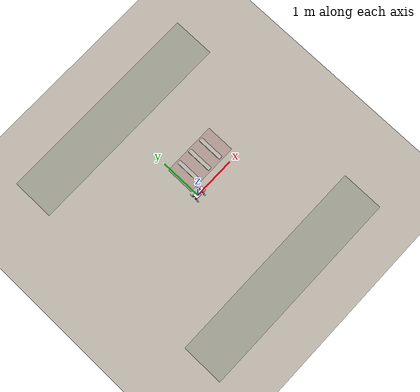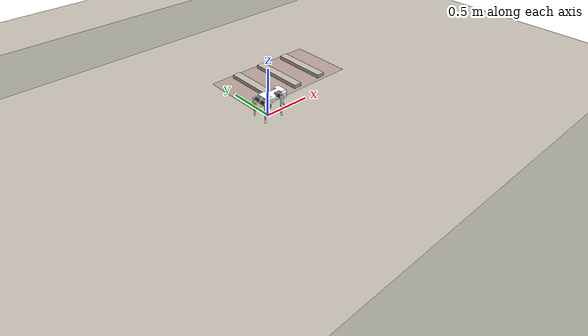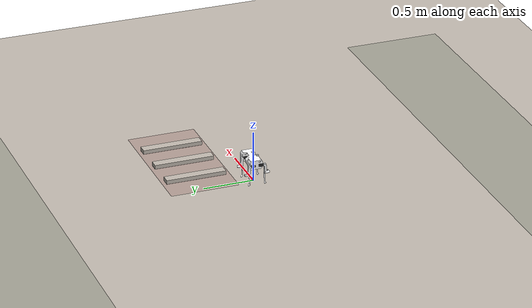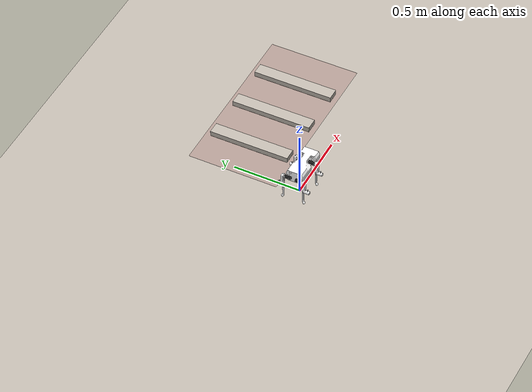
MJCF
<mujoco model="Pupper">
  <compiler angle="radian" meshdir="mesh/" texturedir="texture/" inertiafromgeom="false"/>

  <default>
    <mesh scale="0.001 0.001 0.001"/>
    <joint type="hinge" limited="true" armature="0.01936" damping="1.049"/>
    <geom conaffinity="0"/>
    <position forcelimited="true"/>
    <default class="2x4">
      <geom type="box" material="Fir" size="0.045 0.30 0.02" conaffinity="1"/>
    </default>
  </default>

  <option>
    <flag sensornoise="disable"/>
  </option>

  <size nstack="300000" nuser_geom="1"/>

  <option timestep="0.0001"/>

  <asset>
    <texture builtin="gradient" height="100" rgb1="1 1 1" rgb2="0 0 0" type="skybox" width="100"/>
    <mesh file="TCBody.stl"/>
    <mesh file="Upper Leg plus Motor Left Side.stl"/>
    <mesh file="Upper Leg plus Motor Right Side.stl"/>
    <mesh file="Upper Leg Left Side (reduced).stl"/>
    <mesh file="Upper Leg Right Side (reduced).stl"/>
    <mesh file="M2006.stl"/>
    <mesh file="Lower Leg Round Left Side.stl"/>
    <mesh file="Lower Leg Round Right Side.stl"/>

    <texture file="BrushedAluminum.png" type="2d"/>
    <texture file="Concrete.png" type="2d"/>
    <texture file="Fir.png" type="cube" gridsize="3 4" gridlayout=".U..LFRB.D.."/>
    <texture file="Marble.png" type="cube"/>
    <texture file="Oak.png" type="2d"/>

    <material name="ABS" rgba="1 1 1 1"/>
    <material name="BrushedAluminum" texture="BrushedAluminum" specular="0.9" shininess="0.9" reflectance="0.3"/>
    <material name="Concrete" texture="Concrete" specular="0" shininess="0.1" reflectance="0" texrepeat="2 2"/>
    <material name="Fir" texture="Fir" specular="0.1" shininess="0.01" reflectance="0.01" texrepeat="1 3"/>
    <material name="M2006" specular="0.9" shininess="0.9" reflectance="0.3" rgba = ".1 .1 .1 1"/>
    <material name="Marble" texture="Marble" rgba=".7 .65 .65 0.9"/>
    <material name="Oak" texture="Oak" specular="0.1" shininess="0.01" reflectance="0.01" texrepeat="4 4"/>
  </asset>

  <worldbody>
    <light directional="true" diffuse=".2 .2 .2" specular="0.1 0.1 0.1" pos="0 0 5.0" dir="0 0 -1"/>
    <light directional="true" diffuse=".3 .3 .3" specular="0.2 0.2 0.2" pos="0 0 4" dir="0 0 -1"/>
    <geom type="plane" material="Concrete" size="4 4 .4" conaffinity="1" name="floor"/>
    <site type="box" size="2.5 .5 .001" pos="0 -2.5 0" rgba=".2 .3 .2 .2"/>
    <site type="box" size="2.5 .5 .001" pos="0 2.5 0" rgba=".2 .3 .2 .2"/>
    <site type="box" size=".64 0.34 .001" pos="0.6 0.5 0" rgba=".5 .2 .2 .2"/>
    <geom class="2x4" pos=".25 0.5 0.02"/>
    <geom class="2x4" pos=".59 0.5 0.02"/>
    <geom class="2x4" pos=".93 0.5 0.02"/>

    <body name="torso" pos="0 0 0.2">
      <inertial pos="0 0 0" mass="1.0" diaginertia="0.0003688 0.002508 0.002674"/>
      <camera name="track" mode="trackcom" pos="0 -2 0.3" xyaxes="1 0 0 0 0 1"/>
      <camera name="puppercam" pos="0 0.16 0.11" quat="0.7453559925 0.6666666 0 0"/>
      <freejoint/>
      <geom type="mesh" mesh="TCBody" pos="-0.08 0 0" quat="0.5 0.5 0.5 0.5" material="ABS"/>

      <body name="fr_module" pos="0.1 -0.04 0">
        <inertial pos="0 0 0" mass="0.08" diaginertia="3.698e-05 7.127e-06 4.075e-05"/>
        <joint name="fr_x" axis="1 0 0" range="-1.57 1.57"/>
        <!-- the pos and quat on the motor orient the tab (electrical connection) to point up -->
        <geom type="mesh" mesh="M2006" material="M2006" pos="-0.0145 0.008 -0.015" quat="0 0 0.7071068 0.7071068"/>
        <body pos="0 -0.032 -0.08" quat="0 0 0.7071068 0.7071068">
          <inertial pos="0 0 0" mass="0.06" diaginertia="0.0002253 6.493e-05 0.0002502"/>
          <joint name="fr_y" axis="0 0 1" pos="0 0.08 0" range="-1.57 1.57"/>
          <geom type="mesh" mesh="Upper Leg plus Motor Right Side" quat="0.7071068 0 0.7071068 0" material="ABS"/>
          <body>
            <inertial pos="0 0 0" mass="0.03" diaginertia="0.0002253 6.493e-05 0.0002502"/>
            <joint name="fr_y2" axis="0 0 1" range="-3.14 0.0"/>
            <geom type="mesh" mesh="Lower Leg Round Right Side" material="ABS"/>
          </body>
        </body>
      </body>

      <body name="fl_module" pos="0.1 0.04 0">
        <inertial pos="0 0 0" mass="0.08" diaginertia="3.698e-05 7.127e-06 4.075e-05"/>
        <joint name="fl_x" axis="1 0 0" range="-1.57 1.57"/>
        <!-- the pos and quat on the motor orient the tab (electrical connection) to point up -->
        <geom type="mesh" mesh="M2006" material="M2006" pos="0.0145 -0.008 -0.015" quat="0.7071068 0.7071068 0 0"/>
        <body pos="0 0.032 -0.08" quat="0 0 0.7071068 0.7071068">
          <inertial pos="0 0 0" mass="0.06" diaginertia="0.0002253 6.493e-05 0.0002502"/>
          <joint name="fl_y" axis="0 0 1" pos="0 0.08 0" range="-1.57 1.57"/>
          <geom type="mesh" mesh="Upper Leg plus Motor Left Side" quat="0.7071068 0 -0.7071068 0" material="ABS"/>
          <body>
            <inertial pos="0 0 0" mass="0.03" diaginertia="0.0002253 6.493e-05 0.0002502"/>
            <joint name="fl_y2" axis="0 0 1" range="-3.14 0.0"/>
            <geom type="mesh" mesh="Lower Leg Round Left Side" material="ABS"/>
          </body>
        </body>
      </body>

      <body name="br_module" pos="-0.1 -0.04 0">
        <inertial pos="0 0 0" mass="0.08" diaginertia="3.698e-05 7.127e-06 4.075e-05"/>
        <joint name="br_x" axis="1 0 0" range="-1.57 1.57"/>
        <!-- the pos and quat on the motor orient the tab (electrical connection) to point up -->
        <geom type="mesh" mesh="M2006" material="M2006" pos="-0.0145 0.008 -0.015" quat="0 0 0.7071068 0.7071068"/>
        <body pos="0 -0.032 -0.08" quat="0 0 0.7071068 0.7071068">
          <inertial pos="0 0 0" mass="0.06" diaginertia="0.0002253 6.493e-05 0.0002502"/>
          <joint name="br_y" axis="0 0 1" pos="0 0.08 0" range="-1.57 1.57"/>
          <geom type="mesh" mesh="Upper Leg plus Motor Right Side" quat="0.7071068 0 0.7071068 0" material="ABS"/>
          <body>
            <inertial pos="0 0 0" mass="0.03" diaginertia="0.0002253 6.493e-05 0.0002502"/>
            <joint name="br_y2" axis="0 0 1" range="-3.14 0.0"/>
            <geom type="mesh" mesh="Lower Leg Round Right Side" material="ABS"/>
          </body>
        </body>
      </body>

      <body name="bl_module" pos="-0.1 0.04 0">
        <inertial pos="0 0 0" mass="0.08" diaginertia="3.698e-05 7.127e-06 4.075e-05"/>
        <joint name="bl_x" axis="1 0 0" range="-1.57 1.57"/>
        <!-- the pos and quat on the motor orient the tab (electrical connection) to point up -->
        <geom type="mesh" mesh="M2006" material="M2006" pos="0.0145 -0.008 -0.015" quat="0.7071068 0.7071068 0 0"/>
        <body pos="0 0.032 -0.08" quat="0 0 0.7071068 0.7071068">
          <inertial pos="0 0 0" mass="0.06" diaginertia="0.0002253 6.493e-05 0.0002502"/>
          <joint name="bl_y" axis="0 0 1" pos="0 0.08 0" range="-1.57 1.57"/>
          <geom type="mesh" mesh="Upper Leg plus Motor Left Side" quat="0.7071068 0 -0.7071068 0" material="ABS"/>
          <body>
            <inertial pos="0 0 0" mass="0.03" diaginertia="0.0002253 6.493e-05 0.0002502"/>
            <joint name="bl_y2" axis="0 0 1" range="-3.14 0.0"/>
            <geom type="mesh" mesh="Lower Leg Round Left Side" material="ABS"/>
          </body>
        </body>
      </body>
    </body>
  </worldbody>

  <actuator>
    <!-- kp: Position feedback gain.  -->
    <!-- forcerange: Range for clamping the force output. The compiler expects the first value to be no greater than the second value.  -->
    <position gear="1" joint="fr_x" name="fr_x"   kp="300" forcerange="-9.4 9.4"/>
    <position gear="1" joint="fr_y" name="fr_y"   kp="300" forcerange="-9.4 9.4"/>
    <position gear="1" joint="fr_y2" name="fr_y2" kp="300" forcerange="-9.4 9.4"/>

    <position gear="1" joint="fl_x" name="fl_x"   kp="300" forcerange="-9.4 9.4"/>
    <position gear="1" joint="fl_y" name="fl_y"   kp="300" forcerange="-9.4 9.4"/>
    <position gear="1" joint="fl_y2" name="fl_y2" kp="300" forcerange="-9.4 9.4"/>

    <position gear="1" joint="br_x" name="br_x"   kp="300" forcerange="-9.4 9.4"/>
    <position gear="1" joint="br_y" name="br_y"   kp="300" forcerange="-9.4 9.4"/>
    <position gear="1" joint="br_y2" name="br_y2" kp="300" forcerange="-9.4 9.4"/>

    <position gear="1" joint="bl_x" name="bl_x"   kp="300" forcerange="-9.4 9.4"/>
    <position gear="1" joint="bl_y" name="bl_y"   kp="300" forcerange="-9.4 9.4"/>
    <position gear="1" joint="bl_y2" name="bl_y2" kp="300" forcerange="-9.4 9.4"/>
  </actuator>
</mujoco>
